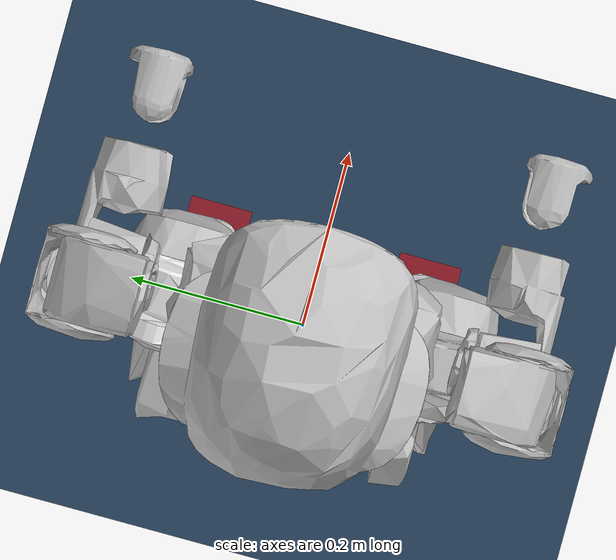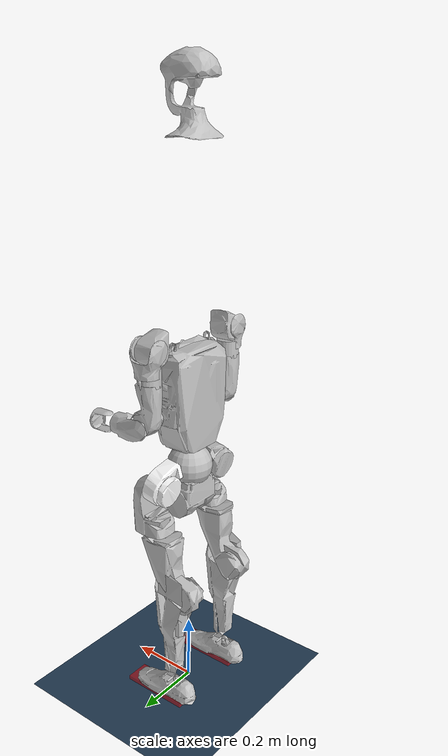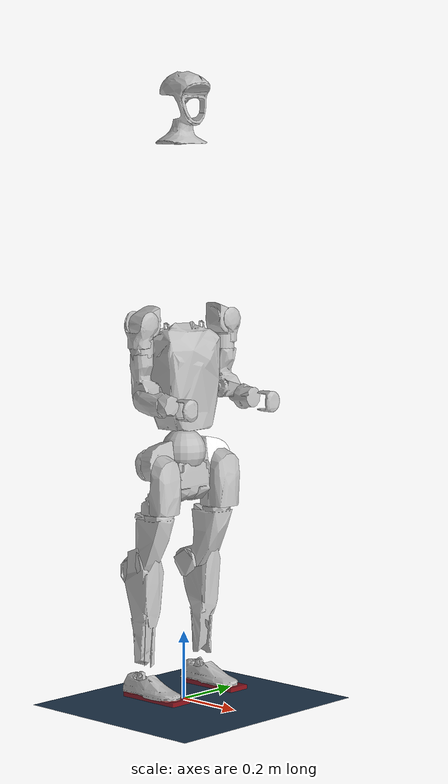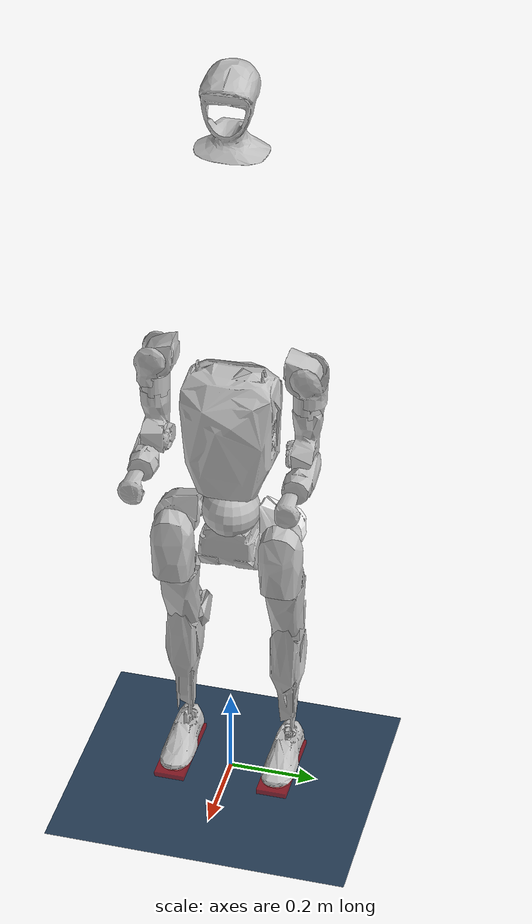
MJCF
<mujoco model="MagicBotZ1">
  <option gravity='0 0 -9.81' solver='PGS'/>
  <compiler angle="radian" meshdir="../meshes"/>
  <statistic meansize="0.144785" extent="1.23314" center="0.025392 2.0634e-05 -0.245975"/>
  <default>
    <joint damping="0.001" armature="0.01" frictionloss="0.1"/>
  </default>
  <option timestep="0.002"/>
  <option integrator="implicit"/>

  <asset>
    <texture type="skybox" builtin="gradient" rgb1="0.3 0.5 0.7" rgb2="0 0 0" width="512" height="512" />
    <texture name="texplane" type="2d" builtin="checker" rgb1=".2 .3 .4" rgb2=".1 0.15 0.2" width="512" height="512" mark="cross" markrgb=".8 .8 .8" />
    <material name="matplane" reflectance="0.3" texture="texplane" texrepeat="1 1" texuniform="true" />
    <mesh name="pelvis" file="pelvis.STL"/>
    <mesh name="torso_link" file="torso_link.STL"/>
    <mesh name="right_shoulder_pitch_link" file="right_shoulder_pitch_link.STL"/>
    <mesh name="right_shoulder_roll_link" file="right_shoulder_roll_link.STL"/>
    <mesh name="right_shoulder_yaw_link" file="right_shoulder_yaw_link.STL"/>
    <mesh name="right_elbow_link" file="right_elbow_link.STL"/>
    <mesh name="right_wrist_yaw_link" file="right_wrist_yaw_link.STL"/>
    <mesh name="left_shoulder_pitch_link" file="left_shoulder_pitch_link.STL"/>
    <mesh name="left_shoulder_roll_link" file="left_shoulder_roll_link.STL"/>
    <mesh name="left_shoulder_yaw_link" file="left_shoulder_yaw_link.STL"/>
    <mesh name="left_elbow_link" file="left_elbow_link.STL"/>
    <mesh name="left_wrist_yaw_link" file="left_wrist_yaw_link.STL"/>
    <mesh name="head_link" file="head_link.STL"/>
    <mesh name="right_hip_pitch_link" file="right_hip_pitch_link.STL"/>
    <mesh name="right_hip_roll_link" file="right_hip_roll_link.STL"/>
    <mesh name="right_hip_yaw_link" file="right_hip_yaw_link.STL"/>
    <mesh name="right_knee_link" file="right_knee_link.STL"/>
    <mesh name="right_ankle_pitch_link" file="right_ankle_pitch_link.STL"/>
    <mesh name="right_ankle_roll_link" file="right_ankle_roll_link.STL"/>
    <mesh name="left_hip_pitch_link" file="left_hip_pitch_link.STL"/>
    <mesh name="left_hip_roll_link" file="left_hip_roll_link.STL"/>
    <mesh name="left_hip_yaw_link" file="left_hip_yaw_link.STL"/>
    <mesh name="left_knee_link" content_type="model/stl" file="left_knee_link.STL"/>
    <mesh name="left_ankle_pitch_link" file="left_ankle_pitch_link.STL"/>
    <mesh name="left_ankle_roll_link" content_type="model/stl" file="left_ankle_roll_link.STL"/>
  </asset>

  <worldbody>
    <body name="pelvis"  pos="0 0 0.73">
      <inertial pos="0.0001 0 0.0044" quat="0.707107 0.707107 0 0" mass="3.4083" diaginertia="0.0095 0.0094 0.0056"/>
      <joint name="floating_base" type="free"/>
      <geom type="mesh" contype="0" conaffinity="0" group="1" density="0" rgba="0.75294 0.75294 0.75294 1" mesh="pelvis"/>
      <geom type="sphere" size="0.065" rgba="0.75294 0.75294 0.75294 1"/>
      <camera name="camera1" mode="targetbody" pos="5 0 0.8" euler="1.57 0 1.57" fovy="60"/>
      <camera name="camera2" mode="track" pos="5 0 0.8" euler="1.57 0 1.57" fovy="60"/>
      <site name='imu' size='0.01' pos='0.0 0 0.0'/>
      <body name="left_hip_pitch_link" pos="0 0.06875 0">
        <inertial pos="-0.0002 0.0495 -0.0399" quat="0.951641 0.307212 0 0" mass="1.5089" diaginertia="0.002 0.00181623 0.00118377"/>
        <joint name="left_hip_pitch_joint" pos="0 0 0" axis="0 1 0" range="-2.7925 2.7925" damping="4.0"/>
        <geom type="mesh" contype="0" conaffinity="0" group="1" density="0" rgba="1 1 1 1" mesh="left_hip_pitch_link"/>
        <geom type="mesh" rgba="1 1 1 1" mesh="left_hip_pitch_link"/>
        <body name="left_hip_roll_link" pos="0 0.053724 -0.045579">
          <inertial pos="0.0066 -0.0001 -0.0869" quat="0.968946 0 0.247273 0" mass="1.9215" diaginertia="0.00388217 0.0036 0.00221783"/>
          <joint name="left_hip_roll_joint" pos="0 0 0" axis="1 0 0" range="-0.524 2.967" damping="4.0"/>
          <geom type="mesh" contype="0" conaffinity="0" group="1" density="0" rgba="0.75294 0.75294 0.75294 1" mesh="left_hip_roll_link"/>
          <geom type="mesh" rgba="0.75294 0.75294 0.75294 1" mesh="left_hip_roll_link"/>
          <body name="left_hip_yaw_link" pos="-0.00084052 0 -0.1255">
            <inertial pos="-0.0188 -0.0041 -0.0763" quat="0.97117 -0.0537438 0.205083 -0.109001" mass="0.9002" diaginertia="0.00401624 0.00379582 0.00158794"/>
            <joint name="left_hip_yaw_joint" pos="0 0 0" axis="0 0 1" range="-2.7925 2.7925" damping="4.0"/>
            <geom type="mesh" contype="0" conaffinity="0" group="1" density="0" rgba="0.75294 0.75294 0.75294 1" mesh="left_hip_yaw_link"/>
            <geom type="mesh" rgba="0.75294 0.75294 0.75294 1" mesh="left_hip_yaw_link"/>
            <body name="left_knee_link" pos="-0.052111 0 -0.13729">
              <inertial pos="0.0009 -0.0007 -0.101" quat="0.70981 -3.95743e-05 -0.00819614 0.704345" mass="3.7275" diaginertia="0.0412046 0.0406046 0.00639073"/>
              <joint name="left_knee_joint" pos="0 0 0" axis="0 1 0" range="0 2.653" damping="5.0"/>
              <geom type="mesh" contype="0" conaffinity="0" group="1" density="0" rgba="0.75294 0.75294 0.75294 1" mesh="left_knee_link"/>
              <geom type="mesh" rgba="0.75294 0.75294 0.75294 1" mesh="left_knee_link"/>
              <body name="left_ankle_pitch_link" pos="0 0 -0.34">
                <inertial pos="0.00094063 5.0401e-07 -0.0083154" quat="0.5 0.5 0.5 0.5" mass="0.048544" diaginertia="1.12e-05 1.1e-05 1.033e-05"/>
                <joint name="left_ankle_pitch_joint" pos="0 0 0" axis="0 1 0" range="-0.873 0.524" damping="3.0"/>
                <geom type="mesh" contype="0" conaffinity="0" group="1" density="0" rgba="0.75294 0.75294 0.75294 1" mesh="left_ankle_pitch_link"/>
                <geom type="mesh" rgba="0.75294 0.75294 0.75294 1" mesh="left_ankle_pitch_link"/>
                <body name="left_ankle_roll_link" pos="0 0 -0.018">
                  <inertial pos="0.041316 0.00048241 -0.031752" quat="0 0.724505 0 0.68927" mass="0.7019" diaginertia="0.00240499 0.0023 0.000395012"/>
                  <joint name="left_ankle_roll_joint" pos="0 0 0" axis="1 0 0" range="-0.262 0.262" damping="3.0"/>
                  <geom type="mesh" contype="0" conaffinity="0" group="1" density="0" rgba="0.75294 0.75294 0.75294 1" mesh="left_ankle_roll_link"/>
                  <geom type="box" rgba="1 0 0 0.5" pos="0.06 0 -0.038" size="0.10 0.035 0.006" contype="1" conaffinity="15" friction="1 0.005 0.0001"/>
                </body>
              </body>
            </body>
          </body>
        </body>
      </body>
      <body name="right_hip_pitch_link" pos="0 -0.06875 0">
        <inertial pos="-0.0002 -0.0492 -0.0399" quat="0.951641 -0.307212 0 0" mass="1.5089" diaginertia="0.002 0.00181623 0.00118377"/>
        <joint name="right_hip_pitch_joint" pos="0 0 0" axis="0 1 0" range="-2.7925 2.7925" damping="4.0"/>
        <geom type="mesh" contype="0" conaffinity="0" group="1" density="0" rgba="0.75294 0.75294 0.75294 1" mesh="right_hip_pitch_link"/>
        <geom type="mesh" rgba="0.75294 0.75294 0.75294 1" mesh="right_hip_pitch_link"/>
        <body name="right_hip_roll_link" pos="0 -0.053724 -0.045579">
          <inertial pos="0.0069 0.0029 -0.0869" quat="0.968946 0 0.247273 0" mass="1.9215" diaginertia="0.00388217 0.0036 0.00221783"/>
          <joint name="right_hip_roll_joint" pos="0 0 0" axis="1 0 0" range="-2.967 0.524" damping="4.0"/>
          <geom type="mesh" contype="0" conaffinity="0" group="1" density="0" rgba="0.75294 0.75294 0.75294 1" mesh="right_hip_roll_link"/>
          <geom type="mesh" rgba="0.75294 0.75294 0.75294 1" mesh="right_hip_roll_link"/>
          <body name="right_hip_yaw_link" pos="-0.00050599 0.0029213 -0.12555">
            <inertial pos="-0.0188 0.0027 -0.0763" quat="0.97117 0.0537438 0.205083 0.109001" mass="0.9002" diaginertia="0.00401624 0.00379582 0.00158794"/>
            <joint name="right_hip_yaw_joint" pos="0 0 0" axis="0 0 1" range="-2.7925 2.7925" damping="4.0"/>
            <geom type="mesh" contype="0" conaffinity="0" group="1" density="0" rgba="0.75294 0.75294 0.75294 1" mesh="right_hip_yaw_link"/>
            <geom type="mesh" rgba="0.75294 0.75294 0.75294 1" mesh="right_hip_yaw_link"/>
            <body name="right_knee_link" pos="-0.052111 0 -0.13729">
              <inertial pos="0.0009 0.0009 -0.101" quat="0.705029 -0.00718436 -0.00106635 0.709141" mass="3.7292" diaginertia="0.0412026 0.0406047 0.00639274"/>
              <joint name="right_knee_joint" pos="0 0 0" axis="0 1 0" range="0 2.653" damping="5.0"/>
              <geom type="mesh" contype="0" conaffinity="0" group="1" density="0" rgba="0.75294 0.75294 0.75294 1" mesh="right_knee_link"/>
              <geom type="mesh" rgba="0.75294 0.75294 0.75294 1" mesh="right_knee_link"/>
              <body name="right_ankle_pitch_link" pos="0 0 -0.34">
                <inertial pos="0.0009 0 -0.0083" quat="0.5 0.5 0.5 0.5" mass="0.048544" diaginertia="1.12e-05 1.1e-05 1.033e-05"/>
                <joint name="right_ankle_pitch_joint" pos="0 0 0" axis="0 1 0" range="-0.873 0.524" damping="3.0"/>
                <geom type="mesh" contype="0" conaffinity="0" group="1" density="0" rgba="0.75294 0.75294 0.75294 1" mesh="right_ankle_pitch_link"/>
                <geom type="mesh" rgba="0.75294 0.75294 0.75294 1" mesh="right_ankle_pitch_link"/>
                <body name="right_ankle_roll_link" pos="0 0 -0.018">
                  <inertial pos="0.041294 -0.0010615 -0.031752" quat="0 0.724505 0 0.68927" mass="0.70183" diaginertia="0.00240499 0.0023 0.000395012"/>
                  <joint name="right_ankle_roll_joint" pos="0 0 0" axis="1 0 0" range="-0.262 0.262" damping="3.0"/>
                  <geom type="mesh" contype="0" conaffinity="0" group="1" density="0" rgba="0.75294 0.75294 0.75294 1" mesh="right_ankle_roll_link"/>
                  <geom type="box" rgba="1 0 0 0.5" pos="0.06 0 -0.038" size="0.10 0.035 0.006" contype="1" conaffinity="15" friction="1 0.005 0.0001"/>
                </body>
              </body>
            </body>
          </body>
        </body>
      </body>
      <body name="torso_link" pos="0 0 0.0619">
        <inertial pos="0.0061 0.0003 0.1879" quat="0.999977 0 0.00682264 0" mass="9.8779" diaginertia="0.15562 0.1368 0.0456795"/>
        <joint name="waist_yaw_joint" pos="0 0 0" axis="0 0 1" range="-2.79 2.79" damping="4.0"/>
        <geom type="mesh" contype="0" conaffinity="0" group="1" density="0" rgba="0.75294 0.75294 0.75294 1" mesh="torso_link"/>
        <geom type="mesh" rgba="0.75294 0.75294 0.75294 1" mesh="torso_link"/>
        <body name="left_shoulder_pitch_link" pos="0 0.11963 0.3208" quat="0.99813 0.06105 0 0">
          <inertial pos="0.0033 0.0422 -0.0117" quat="0.99813 -0.06105 0 0" mass="0.8939" diaginertia="0.001 0.0007 0.0009"/>
          <joint name="left_shoulder_pitch_joint" pos="0 0 0" axis="0 1 0" range="-2.88 2.88" damping="4.0"/>
          <geom type="mesh" contype="0" conaffinity="0" group="1" density="0" rgba="0.75294 0.75294 0.75294 1" mesh="left_shoulder_pitch_link" quat="0.99813 -0.06105 0 0"/>
          <geom type="mesh" rgba="0.75294 0.75294 0.75294 1" mesh="left_shoulder_pitch_link" quat="0.99813 -0.06105 0 0"/>
          <body name="left_shoulder_roll_link" pos="0 0.047187 -0.013786" quat="0.99813 -0.06105 0 0">
            <inertial pos="-0.0006 0.0016 -0.0673" mass="0.7787" diaginertia="0.0012 0.0013 0.0007"/>
            <joint name="left_shoulder_roll_joint" pos="0 0 0" axis="1 0 0" range="-0.175 2.2515" damping="4.0"/>
            <geom type="mesh" contype="0" conaffinity="0" group="1" density="0" rgba="0.75294 0.75294 0.75294 1" mesh="left_shoulder_roll_link"/>
            <geom size="0.032 0.025" pos="0 0 -0.07" type="cylinder" rgba="0.75294 0.75294 0.75294 1"/>
            <body name="left_shoulder_yaw_link" pos="0 0 -0.1171">
              <inertial pos="0.0035409 -0.00073964 -0.044592" quat="0.99329 0 -0.115653 0" mass="0.35928" diaginertia="0.000923607 0.0008 0.000476393"/>
              <joint name="left_shoulder_yaw_joint" pos="0 0 0" axis="0 0 1" range="-2.618 2.618" damping="4.0"/>
              <geom type="mesh" contype="0" conaffinity="0" group="1" density="0" rgba="0.75294 0.75294 0.75294 1" mesh="left_shoulder_yaw_link"/>
              <geom type="mesh" rgba="0.75294 0.75294 0.75294 1" mesh="left_shoulder_yaw_link"/>
              <body name="left_elbow_link" pos="0.01924 0 -0.0979">
                <inertial pos="0.0447 -0.0015 -0.0086458" quat="0.418542 0.595366 0.484402 0.485507" mass="1.48" diaginertia="0.00460603 0.00450553 0.00108844"/>
                <joint name="left_elbow_joint" pos="0 0 0" axis="0 1 0" range="-0.96 2.0944" damping="4.0"/>
                <geom type="mesh" contype="0" conaffinity="0" group="1" density="0" rgba="0.75294 0.75294 0.75294 1" mesh="left_elbow_link"/>
                <geom type="mesh" rgba="0.75294 0.75294 0.75294 1" mesh="left_elbow_link"/>
                <body name="left_wrist_yaw_link" pos="0.138 0 -0.017415">
                  <inertial pos="0.025808 0.00016898 0.00074869" quat="0.5 0.5 0.5 0.5" mass="0.2728" diaginertia="0.0003 0.0003 0.0002"/>
                  <joint name="left_wrist_yaw_joint" pos="0 0 0" axis="1 0 0" range="-2.618 2.618" damping="4.0"/>
                  <geom type="mesh" contype="0" conaffinity="0" group="1" density="0" rgba="0.75294 0.75294 0.75294 1" mesh="left_wrist_yaw_link"/>
                  <geom type="mesh" rgba="0.75294 0.75294 0.75294 1" mesh="left_wrist_yaw_link"/>
                </body>
              </body>
            </body>
          </body>
        </body>
        <body name="right_shoulder_pitch_link" pos="0 -0.11963 0.3208" quat="0.99813 -0.06105 0 0">
          <inertial pos="0.0032 -0.0422 -0.0117" quat="0.99813 0.06105 0 0" mass="0.8976" diaginertia="0.001 0.0007 0.0009"/>
          <joint name="right_shoulder_pitch_joint" pos="0 0 0" axis="0 1 0" range="-2.88 2.88" damping="4.0"/>
          <geom type="mesh" contype="0" conaffinity="0" group="1" density="0" rgba="0.75294 0.75294 0.75294 1" mesh="right_shoulder_pitch_link" quat="0.99813 0.06105 0 0"/>
          <geom type="mesh" rgba="0.75294 0.75294 0.75294 1" mesh="right_shoulder_pitch_link" quat="0.99813 0.06105 0 0"/>
          <body name="right_shoulder_roll_link" pos="0 -0.047187 -0.013786" quat="0.99813 0.06105 0 0">
            <inertial pos="-0.0005 -0.0016 -0.0678" mass="0.7868" diaginertia="0.0012 0.0013 0.0007"/>
            <joint name="right_shoulder_roll_joint" pos="0 0 0" axis="1 0 0" range="-2.2515 0.175" damping="4.0"/>
            <geom type="mesh" contype="0" conaffinity="0" group="1" density="0" rgba="0.75294 0.75294 0.75294 1" mesh="right_shoulder_roll_link"/>
            <geom type="cylinder" size="0.032 0.025" pos="0 0 -0.07"  rgba="0.75294 0.75294 0.75294 1"/>
            <body name="right_shoulder_yaw_link" pos="0 0 -0.1171">
              <inertial pos="0.0035415 0.0007384 -0.044591" quat="0.99329 0 -0.115653 0" mass="0.3593" diaginertia="0.000923607 0.0008 0.000476393"/>
              <joint name="right_shoulder_yaw_joint" pos="0 0 0" axis="0 0 1" range="-2.618 2.618" damping="4.0"/>
              <geom type="mesh" contype="0" conaffinity="0" group="1" density="0" rgba="0.75294 0.75294 0.75294 1" mesh="right_shoulder_yaw_link"/>
              <geom type="mesh" rgba="0.75294 0.75294 0.75294 1" mesh="right_shoulder_yaw_link"/>
              <body name="right_elbow_link" pos="0.01924 0 -0.0979">
                <inertial pos="0.0447 0.0015 -0.0087" quat="0.418542 0.595366 0.484402 0.485507" mass="1.48" diaginertia="0.00460603 0.00450553 0.00108844"/>
                <joint name="right_elbow_joint" pos="0 0 0" axis="0 1 0" range="-0.96 2.0944" damping="4.0"/>
                <geom type="mesh" contype="0" conaffinity="0" group="1" density="0" rgba="0.75294 0.75294 0.75294 1" mesh="right_elbow_link"/>
                <geom type="mesh" rgba="0.75294 0.75294 0.75294 1" mesh="right_elbow_link"/>
                <body name="right_wrist_yaw_link" pos="0.138 0 -0.017415">
                  <inertial pos="0.025808 -0.0001686 0.00074876" quat="0.5 0.5 0.5 0.5" mass="0.27279" diaginertia="0.0003 0.0003 0.0002"/>
                  <joint name="right_wrist_yaw_joint" pos="0 0 0" axis="1 0 0" range="-2.618 2.618" damping="4.0"/>
                  <geom type="mesh" contype="0" conaffinity="0" group="1" density="0" rgba="0.75294 0.75294 0.75294 1" mesh="right_wrist_yaw_link"/>
                  <geom type="mesh" rgba="0.75294 0.75294 0.75294 1" mesh="right_wrist_yaw_link"/>
                </body>
              </body>
            </body>
          </body>
        </body>
        <body name="head_link" pos="0 0 0.4889">
          <inertial pos="0.0079 -0.0004 0.0262" quat="0.707107 0 0 0.707107" mass="0.7987" diaginertia="0.0022 0.0017 0.0017"/>
          <geom type="mesh" contype="0" conaffinity="0" group="1" density="0" rgba="0.75294 0.75294 0.75294 1" mesh="head_link"/>
        </body>
      </body>
    </body>
  </worldbody>

  <actuator>
    <motor name="left_hip_pitch_joint" joint="left_hip_pitch_joint"/>
    <motor name="left_hip_roll_joint" joint="left_hip_roll_joint"/>
    <motor name="left_hip_yaw_joint" joint="left_hip_yaw_joint"/>
    <motor name="left_knee_joint" joint="left_knee_joint"/>
    <motor name="left_ankle_pitch_joint" joint="left_ankle_pitch_joint"/>
    <motor name="left_ankle_roll_joint" joint="left_ankle_roll_joint"/>
    <motor name="right_hip_pitch_joint" joint="right_hip_pitch_joint"/>
    <motor name="right_hip_roll_joint" joint="right_hip_roll_joint"/>
    <motor name="right_hip_yaw_joint" joint="right_hip_yaw_joint"/>
    <motor name="right_knee_joint" joint="right_knee_joint"/>
    <motor name="right_ankle_pitch_joint" joint="right_ankle_pitch_joint"/>
    <motor name="right_ankle_roll_joint" joint="right_ankle_roll_joint"/>
    <motor name="waist_yaw_joint" joint="waist_yaw_joint"/>
    <motor name="left_shoulder_pitch_joint" joint="left_shoulder_pitch_joint"/>
    <motor name="left_shoulder_roll_joint" joint="left_shoulder_roll_joint"/>
    <motor name="left_shoulder_yaw_joint" joint="left_shoulder_yaw_joint"/>
    <motor name="left_elbow_joint" joint="left_elbow_joint"/>
    <motor name="left_wrist_yaw_joint" joint="left_wrist_yaw_joint"/>
    <motor name="right_shoulder_pitch_joint" joint="right_shoulder_pitch_joint"/>
    <motor name="right_shoulder_roll_joint" joint="right_shoulder_roll_joint"/>
    <motor name="right_shoulder_yaw_joint" joint="right_shoulder_yaw_joint"/>
    <motor name="right_elbow_joint" joint="right_elbow_joint"/>
    <motor name="right_wrist_yaw_joint" joint="right_wrist_yaw_joint"/>
  </actuator>

  <sensor>
    <jointpos joint="left_hip_pitch_joint" user="6" name='pos_left_hip_pitch'/>
    <jointpos joint="left_hip_roll_joint" user="6" name='pos_left_hip_roll'/>
    <jointpos joint="left_hip_yaw_joint" user="6" name='pos_left_hip_yaw'/>
    <jointpos joint="left_knee_joint" user="6" name='pos_left_knee'/>
    <jointpos joint="left_ankle_pitch_joint" user="6" name='pos_left_ankle_pitch'/>
    <jointpos joint="left_ankle_roll_joint" user="6" name='pos_left_ankle_roll'/>

    <jointpos joint="right_hip_pitch_joint" user="6" name='pos_right_hip_pitch'/>
    <jointpos joint="right_hip_roll_joint" user="6" name='pos_right_hip_roll'/>
    <jointpos joint="right_hip_yaw_joint" user="6" name='pos_right_hip_yaw'/>
    <jointpos joint="right_knee_joint" user="6" name='pos_right_knee'/>
    <jointpos joint="right_ankle_pitch_joint" user="6" name='pos_right_ankle_pitch'/>
    <jointpos joint="right_ankle_roll_joint" user="6" name='pos_right_ankle_roll'/>

    <jointpos joint="waist_yaw_joint" user="6" name='pos_waist_yaw'/>

    <jointpos joint="left_shoulder_pitch_joint" user="6" name='pos_left_shoulder_pitch'/>
    <jointpos joint="left_shoulder_roll_joint" user="6" name='pos_left_shoulder_roll'/>
    <jointpos joint="left_shoulder_yaw_joint" user="6" name='pos_left_shoulder_yaw'/>
    <jointpos joint="left_elbow_joint" user="6" name='pos_left_elbow'/>
    <jointpos joint="left_wrist_yaw_joint" user="6" name='pos_left_wrist_yaw'/>

    <jointpos joint="right_shoulder_pitch_joint" user="6" name='pos_right_shoulder_pitch'/>
    <jointpos joint="right_shoulder_roll_joint" user="6" name='pos_right_shoulder_roll'/>
    <jointpos joint="right_shoulder_yaw_joint" user="6" name='pos_right_shoulder_yaw'/>
    <jointpos joint="right_elbow_joint" user="6" name='pos_right_elbow'/>
    <jointpos joint="right_wrist_yaw_joint" user="6" name='pos_right_wrist_yaw'/>

    <jointvel joint="left_hip_pitch_joint" user="6" name='vel_left_hip_pitch'/>
    <jointvel joint="left_hip_roll_joint" user="6" name='vel_left_hip_roll'/>
    <jointvel joint="left_hip_yaw_joint" user="6" name='vel_left_hip_yaw'/>
    <jointvel joint="left_knee_joint" user="6" name='vel_left_knee'/>
    <jointvel joint="left_ankle_pitch_joint" user="6" name='vel_left_ankle_pitch'/>
    <jointvel joint="left_ankle_roll_joint" user="6" name='vel_left_ankle_roll'/>

    <jointvel joint="right_hip_pitch_joint" user="6" name='vel_right_hip_pitch'/>
    <jointvel joint="right_hip_roll_joint" user="6" name='vel_right_hip_roll'/>
    <jointvel joint="right_hip_yaw_joint" user="6" name='vel_right_hip_yaw'/>
    <jointvel joint="right_knee_joint" user="6" name='vel_right_knee'/>
    <jointvel joint="right_ankle_pitch_joint" user="6" name='vel_right_ankle_pitch'/>
    <jointvel joint="right_ankle_roll_joint" user="6" name='vel_right_ankle_roll'/>

    <jointvel joint="waist_yaw_joint" user="6" name='vel_waist_yaw'/>

    <jointvel joint="left_shoulder_pitch_joint" user="6" name='vel_left_shoulder_pitch'/>
    <jointvel joint="left_shoulder_roll_joint" user="6" name='vel_left_shoulder_roll'/>
    <jointvel joint="left_shoulder_yaw_joint" user="6" name='vel_left_shoulder_yaw'/>
    <jointvel joint="left_elbow_joint" user="6" name='vel_left_elbow'/>
    <jointvel joint="left_wrist_yaw_joint" user="6" name='vel_left_wrist_yaw'/>

    <jointvel joint="right_shoulder_pitch_joint" user="6" name='vel_right_shoulder_pitch'/>
    <jointvel joint="right_shoulder_roll_joint" user="6" name='vel_right_shoulder_roll'/>
    <jointvel joint="right_shoulder_yaw_joint" user="6" name='vel_right_shoulder_yaw'/>
    <jointvel joint="right_elbow_joint" user="6" name='vel_right_elbow'/>
    <jointvel joint="right_wrist_yaw_joint" user="6" name='vel_right_wrist_yaw'/>

    <framequat name='orientation' objtype='site' noise='0.001' objname='imu'/>
    <framepos name='position' objtype='site' noise='0.001' objname='imu'/>
    <gyro name='angular-velocity' site='imu' noise='0.005' cutoff='34.9'/>
    <velocimeter name='linear-velocity' site='imu' noise='0.001' cutoff='30'/>
  </sensor>

  <statistic center="1.0 0.7 1.0" extent="0.8"/>

  <visual>
    <headlight diffuse="0.6 0.6 0.6" ambient="0.1 0.1 0.1" specular="0.9 0.9 0.9"/>
    <rgba haze="0.15 0.25 0.35 1"/>
    <global azimuth="-140" elevation="-20" offwidth="1280" offheight="720"/>
  </visual>

  <asset>
    <texture type="skybox" builtin="flat" rgb1="0 0 0" rgb2="0 0 0" width="512" height="3072"/>
    <texture type="2d" name="groundplane" builtin="checker" mark="edge" rgb1="0.2 0.3 0.4" rgb2="0.1 0.2 0.3" markrgb="0.8 0.8 0.8" width="300" height="300"/>
    <material name="groundplane" texture="groundplane" texuniform="true" texrepeat="5 5" reflectance="0.2"/>
  </asset>

  <worldbody>
    <light pos="1 0 3.5" dir="0 0 -1" directional="true"/>
    <geom name="floor" size="0 0 0.05" type="plane" material="groundplane" friction="1.2 0.02 0.001"/>
  </worldbody>
</mujoco>
